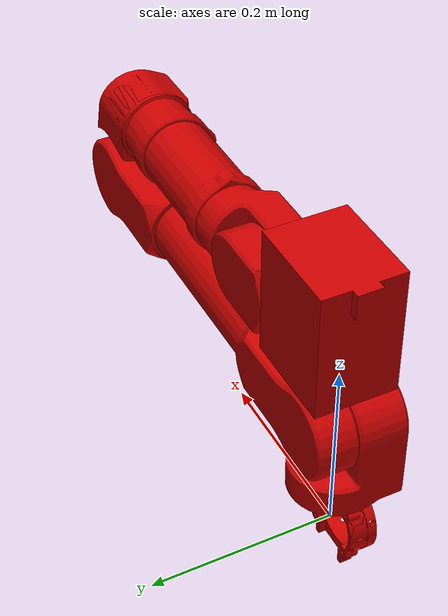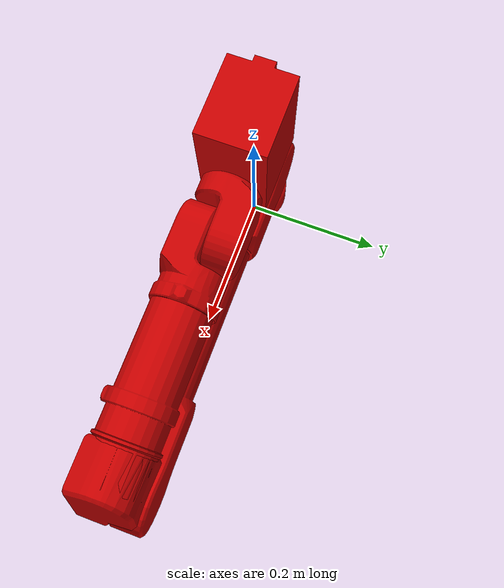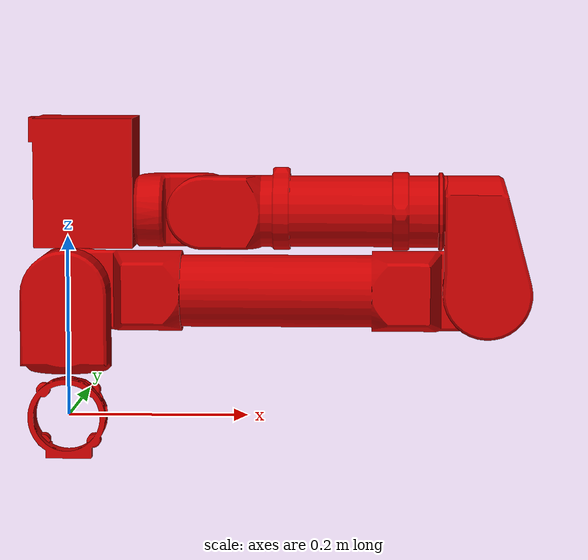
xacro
<?xml version="1.0"?>
<robot xmlns:xacro="http://www.ros.org/wiki/xacro" name="ovis">
    <xacro:arg name="initial_positions_file" default="initial_positions.yaml" />

    <!-- Import ovis urdf file -->
    <xacro:include filename="$(find ovis_description)/urdf/ovis_standalone.urdf" />

    <!-- Import control_xacro -->
    <xacro:include filename="ovis.ros2_control.xacro" />

    <xacro:ovis_ros2_control name="FakeSystem" initial_positions_file="$(arg initial_positions_file)"/>

</robot>

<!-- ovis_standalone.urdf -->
<!-- |    This document was autogenerated by xacro from src/ovis_ros2/src/ovis_description/urdf/ovis_standalone.urdf.xacro | -->
<!-- |    EDITING THIS FILE BY HAND IS NOT RECOMMENDED                                 | -->
<robot name="ovis" xmlns:body="http://playerstage.sourceforge.net/gazebo/xmlschema/#body" xmlns:controller="http://playerstage.sourceforge.net/gazebo/xmlschema/#controller" xmlns:gazebo="http://playerstage.sourceforge.net/gazebo/xmlschema/#gz" xmlns:geom="http://playerstage.sourceforge.net/gazebo/xmlschema/#geom" xmlns:interface="http://playerstage.sourceforge.net/gazebo/xmlschema/#interface" xmlns:joint="http://playerstage.sourceforge.net/gazebo/xmlschema/#joint" xmlns:model="http://playerstage.sourceforge.net/gazebo/xmlschema/#model" xmlns:physics="http://playerstage.sourceforge.net/gazebo/xmlschema/#physics" xmlns:renderable="http://playerstage.sourceforge.net/gazebo/xmlschema/#renderable" xmlns:rendering="http://playerstage.sourceforge.net/gazebo/xmlschema/#rendering" xmlns:sensor="http://playerstage.sourceforge.net/gazebo/xmlschema/#sensor" xmlns:xi="http://www.w3.org/2001/XInclude">
  <!-- Import all Gazebo-customization elements -->
  <link name="base_link"/>
  <!-- for gazebo -->
  <link name="ovis_link_base">
    <visual>
      <geometry>
        <mesh filename="file:///home/capra/rove/rove/install/ovis_description/share/ovis_description/meshes/visual/ovis_base.stl"/>
      </geometry>
      <material name="carbon_fiber">
        <color rgba="0.792156862745098 0 0 1"/>
      </material>
    </visual>
    <collision>
      <geometry>
        <mesh filename="file:///home/capra/rove/rove/install/ovis_description/share/ovis_description/meshes/collision/ovis_base.stl"/>
      </geometry>
    </collision>
    <inertial>
      <mass value="0.46784"/>
      <origin rpy="0 0 0" xyz="0 0 0.1255"/>
      <inertia ixx="0.000951270861568" ixy="0" ixz="0" iyy="0.000951270861568" iyz="0" izz="0.00037427200000000004"/>
    </inertial>
  </link>
  <joint name="ovis_joint_base" type="fixed">
    <parent link="base_link"/>
    <child link="ovis_link_base"/>
    <axis xyz="0 0 0"/>
    <origin rpy="1.5707963267948966 0 0" xyz="0 0 0"/>
    <dynamics damping="0.0" friction="0.0"/>
  </joint>
  <link name="ovis_link_1">
    <visual>
      <geometry>
        <mesh filename="file:///home/capra/rove/rove/install/ovis_description/share/ovis_description/meshes/visual/ovis_shoulder.stl"/>
      </geometry>
      <material name="carbon_fiber">
        <color rgba="0.792156862745098 0 0 1"/>
      </material>
    </visual>
    <collision>
      <geometry>
        <mesh filename="file:///home/capra/rove/rove/install/ovis_description/share/ovis_description/meshes/collision/ovis_shoulder.stl"/>
      </geometry>
    </collision>
    <inertial>
      <mass value="0.7477"/>
      <origin xyz="0 -0.002 -0.0605"/>
      <inertia ixx="0.0015203172520400004" ixy="0" ixz="0" iyy="0.0015203172520400004" iyz="0" izz="0.00059816"/>
    </inertial>
  </link>
  <joint name="ovis_joint_1" type="continuous">
    <parent link="ovis_link_base"/>
    <child link="ovis_link_1"/>
    <axis xyz="0 1 0"/>
    <limit effort="40" velocity="0.6283185307179586"/>
    <origin rpy="0 0 0" xyz="0 0.051 0"/>
    <dynamics damping="0.0" friction="0.0"/>
  </joint>
  <transmission name="ovis_joint_1_trans">
    <type>transmission_interface/SimpleTransmission</type>
    <joint name="ovis_joint_1">
      <hardwareInterface>hardware_interface/EffortJointInterface</hardwareInterface>
    </joint>
    <actuator name="ovis_joint_1_actuator">
      <hardwareInterface>hardware_interface/EffortJointInterface</hardwareInterface>
      <mechanicalReduction>160</mechanicalReduction>
    </actuator>
  </transmission>
  <!--For torque sensing in simulation-->
  <gazebo reference="ovis_joint_1">
    <provideFeedback>true</provideFeedback>
  </gazebo>
  <gazebo reference="ovis_joint_1">
    <sensor name="force_torque_sensor" type="force_torque">
      <always_on>true</always_on>
      <update_rate>30</update_rate>
      <visualize>true</visualize>
      <topic>ovis_joint_1/force_torque</topic>
      <force_torque>
        <frame>sensor</frame>
        <measure_direction>parent_to_child</measure_direction>
      </force_torque>
    </sensor>
  </gazebo>
  <link name="ovis_link_2">
    <visual>
      <geometry>
        <mesh filename="file:///home/capra/rove/rove/install/ovis_description/share/ovis_description/meshes/visual/ovis_upper_arm.stl"/>
      </geometry>
      <material name="carbon_fiber">
        <color rgba="0.792156862745098 0 0 1"/>
      </material>
    </visual>
    <collision>
      <geometry>
        <mesh filename="file:///home/capra/rove/rove/install/ovis_description/share/ovis_description/meshes/collision/ovis_upper_arm.stl"/>
      </geometry>
    </collision>
    <inertial>
      <mass value="0.99"/>
      <origin xyz="0 -0.2065 -0.01"/>
      <inertia ixx="0.010502207990999999" ixy="0" ixz="0" iyy="0.0007920000000000001" iyz="0" izz="0.010502207990999999"/>
    </inertial>
  </link>
  <joint name="ovis_joint_2" type="revolute">
    <parent link="ovis_link_1"/>
    <child link="ovis_link_2"/>
    <axis xyz="0 0 1"/>
    <limit effort="80" lower="0" upper="3.141592653589793" velocity="0.6283185307179586"/>
    <origin rpy="0 0 -1.5707963267948966" xyz="0 0.0889 0"/>
    <dynamics damping="0.0" friction="0.0"/>
  </joint>
  <transmission name="ovis_joint_2_trans">
    <type>transmission_interface/SimpleTransmission</type>
    <joint name="ovis_joint_2">
      <hardwareInterface>hardware_interface/EffortJointInterface</hardwareInterface>
    </joint>
    <actuator name="ovis_joint_2_actuator">
      <hardwareInterface>hardware_interface/EffortJointInterface</hardwareInterface>
      <mechanicalReduction>160</mechanicalReduction>
    </actuator>
  </transmission>
  <!--For torque sensing in simulation-->
  <gazebo reference="ovis_joint_2">
    <provideFeedback>true</provideFeedback>
  </gazebo>
  <gazebo reference="ovis_joint_2">
    <sensor name="force_torque_sensor" type="force_torque">
      <always_on>true</always_on>
      <update_rate>30</update_rate>
      <visualize>true</visualize>
      <topic>ovis_joint_2/force_torque</topic>
      <force_torque>
        <frame>sensor</frame>
        <measure_direction>parent_to_child</measure_direction>
      </force_torque>
    </sensor>
  </gazebo>
  <link name="ovis_link_3">
    <visual>
      <geometry>
        <mesh filename="file:///home/capra/rove/rove/install/ovis_description/share/ovis_description/meshes/visual/ovis_elbow.stl"/>
      </geometry>
      <material name="carbon_fiber">
        <color rgba="0.792156862745098 0 0 1"/>
      </material>
    </visual>
    <collision>
      <geometry>
        <mesh filename="file:///home/capra/rove/rove/install/ovis_description/share/ovis_description/meshes/collision/ovis_elbow.stl"/>
      </geometry>
    </collision>
    <inertial>
      <mass value="0.6763"/>
      <origin xyz="0 0.081 -0.0086"/>
      <inertia ixx="0.0014202243190800001" ixy="0" ixz="0" iyy="0.000304335" iyz="0" izz="0.0014202243190800001"/>
    </inertial>
  </link>
  <joint name="ovis_joint_3" type="revolute">
    <parent link="ovis_link_2"/>
    <child link="ovis_link_3"/>
    <axis xyz="0 0 1"/>
    <limit effort="40" lower="-3.141592653589793" upper="0" velocity="0.6283185307179586"/>
    <origin rpy="0 0 3.141592653589793" xyz="0 0.465 0"/>
    <dynamics damping="0.0" friction="0.0"/>
  </joint>
  <transmission name="ovis_joint_3_trans">
    <type>transmission_interface/SimpleTransmission</type>
    <joint name="ovis_joint_3">
      <hardwareInterface>hardware_interface/EffortJointInterface</hardwareInterface>
    </joint>
    <actuator name="ovis_joint_3_actuator">
      <hardwareInterface>hardware_interface/EffortJointInterface</hardwareInterface>
      <mechanicalReduction>160</mechanicalReduction>
    </actuator>
  </transmission>
  <!--For torque sensing in simulation-->
  <gazebo reference="ovis_joint_3">
    <provideFeedback>true</provideFeedback>
  </gazebo>
  <gazebo reference="ovis_joint_3">
    <sensor name="force_torque_sensor" type="force_torque">
      <always_on>true</always_on>
      <update_rate>30</update_rate>
      <visualize>true</visualize>
      <topic>ovis_joint_3/force_torque</topic>
      <force_torque>
        <frame>sensor</frame>
        <measure_direction>parent_to_child</measure_direction>
      </force_torque>
    </sensor>
  </gazebo>
  <link name="ovis_link_4">
    <visual>
      <geometry>
        <mesh filename="file:///home/capra/rove/rove/install/ovis_description/share/ovis_description/meshes/visual/ovis_forearm.stl"/>
      </geometry>
      <material name="carbon_fiber">
        <color rgba="0.792156862745098 0 0 1"/>
      </material>
    </visual>
    <collision>
      <geometry>
        <mesh filename="file:///home/capra/rove/rove/install/ovis_description/share/ovis_description/meshes/collision/ovis_forearm.stl"/>
      </geometry>
    </collision>
    <inertial>
      <mass value="0.426367"/>
      <origin xyz="0 -0.037 -0.0642"/>
      <inertia ixx="7.734969059999999e-05" ixy="0" ixz="0" iyy="7.734969059999999e-05" iyz="0" izz="0.0001428"/>
    </inertial>
  </link>
  <joint name="ovis_joint_4" type="continuous">
    <parent link="ovis_link_3"/>
    <child link="ovis_link_4"/>
    <axis xyz="0 1 0"/>
    <limit effort="20" velocity="0.8377580409572781"/>
    <origin rpy="0 0 0" xyz="0.0889 0.047625 0"/>
    <dynamics damping="0.0" friction="0.0"/>
  </joint>
  <transmission name="ovis_joint_4_trans">
    <type>transmission_interface/SimpleTransmission</type>
    <joint name="ovis_joint_4">
      <hardwareInterface>hardware_interface/EffortJointInterface</hardwareInterface>
    </joint>
    <actuator name="ovis_joint_4_actuator">
      <hardwareInterface>hardware_interface/EffortJointInterface</hardwareInterface>
      <mechanicalReduction>160</mechanicalReduction>
    </actuator>
  </transmission>
  <!--For torque sensing in simulation-->
  <gazebo reference="ovis_joint_4">
    <provideFeedback>true</provideFeedback>
  </gazebo>
  <gazebo reference="ovis_joint_4">
    <sensor name="force_torque_sensor" type="force_torque">
      <always_on>true</always_on>
      <update_rate>30</update_rate>
      <visualize>true</visualize>
      <topic>ovis_joint_4/force_torque</topic>
      <force_torque>
        <frame>sensor</frame>
        <measure_direction>parent_to_child</measure_direction>
      </force_torque>
    </sensor>
  </gazebo>
  <link name="ovis_link_5">
    <visual>
      <geometry>
        <mesh filename="file:///home/capra/rove/rove/install/ovis_description/share/ovis_description/meshes/visual/ovis_wrist.stl"/>
      </geometry>
      <material name="carbon_fiber">
        <color rgba="0.792156862745098 0 0 1"/>
      </material>
    </visual>
    <collision>
      <geometry>
        <mesh filename="file:///home/capra/rove/rove/install/ovis_description/share/ovis_description/meshes/collision/ovis_wrist.stl"/>
      </geometry>
    </collision>
    <inertial>
      <mass value="0.85968"/>
      <origin xyz="0 -0.145  -0.0076"/>
      <inertia ixx="0.004670909316288" ixy="0" ixz="0" iyy="0.00038685599999999993" iyz="0" izz="0.004670909316288"/>
    </inertial>
  </link>
  <joint name="ovis_joint_5" type="revolute">
    <parent link="ovis_link_4"/>
    <child link="ovis_link_5"/>
    <axis xyz="0 0 1"/>
    <limit effort="20" lower="-1.5707963267948966" upper="1.5707963267948966" velocity="0.8377580409572781"/>
    <origin rpy="0 0 0" xyz="0 0.265 0"/>
    <dynamics damping="0.0" friction="0.0"/>
  </joint>
  <transmission name="ovis_joint_5_trans">
    <type>transmission_interface/SimpleTransmission</type>
    <joint name="ovis_joint_5">
      <hardwareInterface>hardware_interface/EffortJointInterface</hardwareInterface>
    </joint>
    <actuator name="ovis_joint_5_actuator">
      <hardwareInterface>hardware_interface/EffortJointInterface</hardwareInterface>
      <mechanicalReduction>160</mechanicalReduction>
    </actuator>
  </transmission>
  <!--For torque sensing in simulation-->
  <gazebo reference="ovis_joint_5">
    <provideFeedback>true</provideFeedback>
  </gazebo>
  <gazebo reference="ovis_joint_5">
    <sensor name="force_torque_sensor" type="force_torque">
      <always_on>true</always_on>
      <update_rate>30</update_rate>
      <visualize>true</visualize>
      <topic>ovis_joint_5/force_torque</topic>
      <force_torque>
        <frame>sensor</frame>
        <measure_direction>parent_to_child</measure_direction>
      </force_torque>
    </sensor>
  </gazebo>
  <link name="ovis_link_6">
    <visual>
      <geometry>
        <mesh filename="file:///home/capra/rove/rove/install/ovis_description/share/ovis_description/meshes/visual/ovis_flange.stl"/>
      </geometry>
      <material name="carbon_fiber">
        <color rgba="0.792156862745098 0 0 1"/>
      </material>
    </visual>
    <collision>
      <geometry>
        <mesh filename="file:///home/capra/rove/rove/install/ovis_description/share/ovis_description/meshes/collision/ovis_flange.stl"/>
      </geometry>
    </collision>
    <inertial>
      <mass value="0.8447"/>
      <origin xyz="0 -0.103563213 0"/>
      <inertia ixx="0.00247073761701" ixy="0" ixz="0" iyy="0.000380115" iyz="0" izz="0.00247073761701"/>
    </inertial>
  </link>
  <joint name="ovis_joint_6" type="continuous">
    <parent link="ovis_link_5"/>
    <child link="ovis_link_6"/>
    <axis xyz="0 0 1"/>
    <limit effort="20" velocity="0.8377580409572781"/>
    <origin rpy="1.5707963267948966 1.5707963267948966 0" xyz="0 0.0762 0"/>
    <dynamics damping="0.0" friction="0.0"/>
  </joint>
  <transmission name="ovis_joint_6_trans">
    <type>transmission_interface/SimpleTransmission</type>
    <joint name="ovis_joint_6">
      <hardwareInterface>hardware_interface/EffortJointInterface</hardwareInterface>
    </joint>
    <actuator name="ovis_joint_6_actuator">
      <hardwareInterface>hardware_interface/EffortJointInterface</hardwareInterface>
      <mechanicalReduction>160</mechanicalReduction>
    </actuator>
  </transmission>
  <!--For torque sensing in simulation-->
  <gazebo reference="ovis_joint_6">
    <provideFeedback>true</provideFeedback>
  </gazebo>
  <gazebo reference="ovis_joint_6">
    <sensor name="force_torque_sensor" type="force_torque">
      <always_on>true</always_on>
      <update_rate>30</update_rate>
      <visualize>true</visualize>
      <topic>ovis_joint_6/force_torque</topic>
      <force_torque>
        <frame>sensor</frame>
        <measure_direction>parent_to_child</measure_direction>
      </force_torque>
    </sensor>
  </gazebo>
  <link name="ovis_end_effector"/>
  <joint name="ovis_joint_end_effector" type="fixed">
    <parent link="ovis_link_6"/>
    <child link="ovis_end_effector"/>
    <axis xyz="0 0 0"/>
    <origin rpy="3.141592653589793 0 1.5707963267948966" xyz="0 0 -0.1600"/>
  </joint>
</robot>
